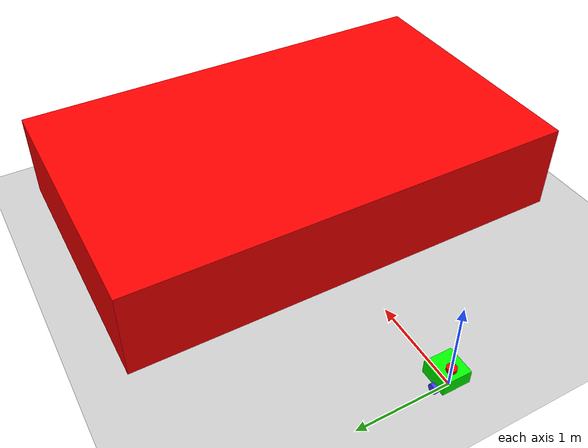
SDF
<?xml version="1.0" ?>
<sdf version="1.9">
    <world name="my_world">
        <include>
            <name>base_link</name>
            <uri>file://src/lab04/description/robot.sdf</uri>
        </include>
        <include>
            <name>base</name>
            <uri>file://src/lab04/description/box.sdf</uri>
        </include>
        <physics name="1ms" type="ignored">
            <max_step_size>0.001</max_step_size>
            <real_time_factor>1.0</real_time_factor>
        </physics>
        <plugin
            filename="libignition-gazebo-physics-system.so"
            name="ignition::gazebo::systems::Physics">
        </plugin>
        <plugin
            filename="libignition-gazebo-user-commands-system.so"
            name="ignition::gazebo::systems::UserCommands">
        </plugin>
        <plugin
            filename="libignition-gazebo-scene-broadcaster-system.so"
            name="ignition::gazebo::systems::SceneBroadcaster">
        </plugin>
        <plugin
            filename="libignition-gazebo-sensors-system.so"
            name="ignition::gazebo::systems::Sensors">
            <render_engine>ogre2</render_engine>
        </plugin>

        <light type="directional" name="sun">
            <cast_shadows>true</cast_shadows>
            <pose>0 0 10 0 0 0</pose>
            <diffuse>0.8 0.8 0.8 1</diffuse>
            <specular>0.2 0.2 0.2 1</specular>
            <attenuation>
                <range>1000</range>
                <constant>0.9</constant>
                <linear>0.01</linear>
                <quadratic>0.001</quadratic>
            </attenuation>
            <direction>-0.5 0.1 -0.9</direction>
        </light>

        <model name="ground_plane">
            <static>true</static>
            <link name="link">
                <collision name="collision">
                <geometry>
                    <plane>
                    <normal>0 0 1</normal>
                    </plane>
                </geometry>
                </collision>
                <visual name="visual">
                <geometry>
                    <plane>
                    <normal>0 0 1</normal>
                    <size>100 100</size>
                    </plane>
                </geometry>
                <material>
                    <ambient>0.8 0.8 0.8 1</ambient>
                    <diffuse>0.8 0.8 0.8 1</diffuse>
                    <specular>0.8 0.8 0.8 1</specular>
                </material>
                </visual>
            </link>
            <!-- Moving Forward-->
            <plugin filename="libignition-gazebo-triggered-publisher-system.so"
            name="ignition::gazebo::systems::TriggeredPublisher">
                <input type="ignition.msgs.Int32" topic="/keyboard/keypress">
                    <match field="data">16777235</match>
                </input>
                <output type="ignition.msgs.Twist" topic="/cmd_vel">
                    linear: {x: 0.5}, angular: {z: 0.0}
                </output>
            </plugin>

            <!-- Stop-->
            <plugin filename="libignition-gazebo-triggered-publisher-system.so"
            name="ignition::gazebo::systems::TriggeredPublisher">
                <input type="ignition.msgs.Int32" topic="/keyboard/keypress">
                    <match field="data">16777216</match>
                </input>
                <output type="ignition.msgs.Twist" topic="/cmd_vel">
                    linear: {x: 0.0}, angular: {z: 0.0}
                </output>
            </plugin>

            <!-- Left -->
            <plugin filename="libignition-gazebo-triggered-publisher-system.so"
            name="ignition::gazebo::systems::TriggeredPublisher">
                <input type="ignition.msgs.Int32" topic="/keyboard/keypress">
                    <match field="data">16777234</match>
                </input>
                <output type="ignition.msgs.Twist" topic="/cmd_vel">
                    linear: {x: 0.0}, angular: {z: 0.5}
                </output>
            </plugin>

            <!-- Right -->
            <plugin filename="libignition-gazebo-triggered-publisher-system.so"
            name="ignition::gazebo::systems::TriggeredPublisher">
                <input type="ignition.msgs.Int32" topic="/keyboard/keypress">
                    <match field="data">16777236</match>
                </input>
                <output type="ignition.msgs.Twist" topic="/cmd_vel">
                    linear: {x: 0.0}, angular: {z: -0.5}
                </output>
            </plugin>

            <!-- back -->
            <plugin filename="libignition-gazebo-triggered-publisher-system.so"
            name="ignition::gazebo::systems::TriggeredPublisher">
                <input type="ignition.msgs.Int32" topic="/keyboard/keypress">
                    <match field="data">16777237</match>
                </input>
                <output type="ignition.msgs.Twist" topic="/cmd_vel">
                    linear: {x: -0.5}, angular: {z: 0.0}
                </output>
            </plugin>
        </model>
    </world>
</sdf>

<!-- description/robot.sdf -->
<sdf version='1.9'>
  <model name='robot'>
    <link name='base_link'>
      <inertial>
        <pose>0.05571428571428574 0 0.07785714285714285 0 0 0</pose>
        <mass>0.69999999999999996</mass>
        <inertia>
          <ixx>0.0063226190476190491</ixx>
          <ixy>0</ixy>
          <ixz>0.0011614285714285719</ixz>
          <iyy>0.007359761904761895</iyy>
          <iyz>0</iyz>
          <izz>0.008762142857142852</izz>
        </inertia>
      </inertial>
      <collision name='base_link_fixed_joint_lump__chassis_collision'>
        <pose>0.04999999999999999 0 0.075 0 0 0</pose>
        <geometry>
          <box>
            <size>0.3 0.3 0.15</size>
          </box>
        </geometry>
      </collision>
      <collision name='base_link_fixed_joint_lump__caster_wheel_collision_1'>
        <pose>0.14 0 0 0 0 0</pose>
        <geometry>
          <sphere>
            <radius>0.050000000000000003</radius>
          </sphere>
        </geometry>
        <surface>
          <contact>
            <ode/>
          </contact>
          <friction>
            <ode>
              <mu>0</mu>
              <mu2>0</mu2>
            </ode>
          </friction>
        </surface>
      </collision>
      <collision name='base_link_fixed_joint_lump__laser_frame_collision_2'>
        <pose>0 0 0.17 0 0 0</pose>
        <geometry>
          <cylinder>
            <length>0.040000000000000001</length>
            <radius>0.050000000000000003</radius>
          </cylinder>
        </geometry>
        <surface>
          <contact>
            <ode/>
          </contact>
          <friction>
            <ode/>
          </friction>
        </surface>
      </collision>
      <visual name='base_link_fixed_joint_lump__chassis_visual'>
        <pose>0.04999999999999999 0 0.075 0 0 0</pose>
        <geometry>
          <box>
            <size>0.3 0.3 0.15</size>
          </box>
        </geometry>
        <material>
          <diffuse>0 1 0 1</diffuse>
          <ambient>0 1 0 1</ambient>
        </material>
      </visual>
      <visual name='base_link_fixed_joint_lump__camera_link_visual_1'>
        <pose>0.205 0 0.08 0 0 0</pose>
        <geometry>
          <box>
            <size>0.01 0.03 0.03</size>
          </box>
        </geometry>
        <material>
          <diffuse>1 0 0 1</diffuse>
          <ambient>1 0 0 1</ambient>
        </material>
      </visual>
      <visual name='base_link_fixed_joint_lump__caster_wheel_visual_2'>
        <pose>0.14 0 0 0 0 0</pose>
        <geometry>
          <sphere>
            <radius>0.050000000000000003</radius>
          </sphere>
        </geometry>
        <material>
          <diffuse>0 0 0 1</diffuse>
          <ambient>0 0 0 1</ambient>
        </material>
      </visual>
      <visual name='base_link_fixed_joint_lump__laser_frame_visual_3'>
        <pose>0 0 0.17 0 0 0</pose>
        <geometry>
          <cylinder>
            <length>0.040000000000000001</length>
            <radius>0.050000000000000003</radius>
          </cylinder>
        </geometry>
        <material>
          <diffuse>1 0 0 1</diffuse>
          <ambient>1 0 0 1</ambient>
        </material>
      </visual>
      <sensor name='camera' type='camera'>
        <camera>
          <horizontal_fov>1.089</horizontal_fov>
          <image>
            <format>R8G8B8</format>
            <width>640</width>
            <height>480</height>
          </image>
          <clip>
            <near>0.050000000000000003</near>
            <far>8</far>
          </clip>
        </camera>
        <always_on>true</always_on>
        <update_rate>30</update_rate>
        <visualize>true</visualize>
        <topic>camera/image_raw</topic>
        <pose>0.205 0 0.08 0 -0 0</pose>
      </sensor>
      <sensor name='lidar' type='gpu_lidar'>
        <pose relative_to='laser_frame'>0 0 0 0 0 0</pose>
        <topic>lidar</topic>
        <update_rate>10</update_rate>
        <ray>
          <scan>
            <horizontal>
              <samples>360</samples>
              <resolution>1</resolution>
              <min_angle>-3.1415926535897931</min_angle>
              <max_angle>3.1415926535897931</max_angle>
            </horizontal>
            <vertical>
              <samples>1</samples>
              <resolution>0.01</resolution>
              <min_angle>0</min_angle>
              <max_angle>0</max_angle>
            </vertical>
          </scan>
          <range>
            <min>0.050000000000000003</min>
            <max>10</max>
            <resolution>0.01</resolution>
          </range>
        </ray>
        <always_on>true</always_on>
        <visualize>true</visualize>
      </sensor>
    </link>
    <joint name='left_wheel_joint' type='revolute'>
      <pose relative_to='base_link'>0 0.175 0 -1.570796326794896 0 0</pose>
      <parent>base_link</parent>
      <child>left_wheel</child>
      <axis>
        <xyz>0 0 1</xyz>
        <limit>
          <lower>-10000000000000000</lower>
          <upper>10000000000000000</upper>
        </limit>
        <dynamics>
          <spring_reference>0</spring_reference>
          <spring_stiffness>0</spring_stiffness>
        </dynamics>
      </axis>
    </joint>
    <link name='left_wheel'>
      <pose relative_to='left_wheel_joint'>0 0 0 0 0 0</pose>
      <inertial>
        <pose>0 0 0 0 0 0</pose>
        <mass>0.10000000000000001</mass>
        <inertia>
          <ixx>7.5833333333333352e-05</ixx>
          <ixy>0</ixy>
          <ixz>0</ixz>
          <iyy>7.5833333333333352e-05</iyy>
          <iyz>0</iyz>
          <izz>0.000125</izz>
        </inertia>
      </inertial>
      <collision name='left_wheel_collision'>
        <pose>0 0 0 0 0 0</pose>
        <geometry>
          <cylinder>
            <length>0.040000000000000001</length>
            <radius>0.050000000000000003</radius>
          </cylinder>
        </geometry>
      </collision>
      <visual name='left_wheel_visual'>
        <pose>0 0 0 0 0 0</pose>
        <geometry>
          <cylinder>
            <length>0.040000000000000001</length>
            <radius>0.050000000000000003</radius>
          </cylinder>
        </geometry>
        <material>
          <diffuse>0.25 0.25 1 1</diffuse>
          <ambient>0.25 0.25 1 1</ambient>
        </material>
      </visual>
    </link>
    <joint name='right_wheel_joint' type='revolute'>
      <pose relative_to='base_link'>0 -0.175 0 1.570796326794896 0 0</pose>
      <parent>base_link</parent>
      <child>right_wheel</child>
      <axis>
        <xyz>0 0 -1</xyz>
        <limit>
          <lower>-10000000000000000</lower>
          <upper>10000000000000000</upper>
        </limit>
        <dynamics>
          <spring_reference>0</spring_reference>
          <spring_stiffness>0</spring_stiffness>
        </dynamics>
      </axis>
    </joint>
    <link name='right_wheel'>
      <pose relative_to='right_wheel_joint'>0 0 0 0 0 0</pose>
      <inertial>
        <pose>0 0 0 0 0 0</pose>
        <mass>0.10000000000000001</mass>
        <inertia>
          <ixx>7.5833333333333352e-05</ixx>
          <ixy>0</ixy>
          <ixz>0</ixz>
          <iyy>7.5833333333333352e-05</iyy>
          <iyz>0</iyz>
          <izz>0.000125</izz>
        </inertia>
      </inertial>
      <collision name='right_wheel_collision'>
        <pose>0 0 0 0 0 0</pose>
        <geometry>
          <cylinder>
            <length>0.040000000000000001</length>
            <radius>0.050000000000000003</radius>
          </cylinder>
        </geometry>
      </collision>
      <visual name='right_wheel_visual'>
        <pose>0 0 0 0 0 0</pose>
        <geometry>
          <cylinder>
            <length>0.040000000000000001</length>
            <radius>0.050000000000000003</radius>
          </cylinder>
        </geometry>
        <material>
          <diffuse>0.25 0.25 1 1</diffuse>
          <ambient>0.25 0.25 1 1</ambient>
        </material>
      </visual>
    </link>
    <pose>0 0 0.05 0 0 0</pose>
    <plugin name='ignition::gazebo::systems::DiffDrive' filename='libignition-gazebo-diff-drive-system.so'>
      <left_joint>left_wheel_joint</left_joint>
      <right_joint>right_wheel_joint</right_joint>
      <wheel_separation>0.3</wheel_separation>
      <wheel_radius>0.05</wheel_radius>
      <odom_publish_frequency>1</odom_publish_frequency>
      <topic>cmd_vel</topic>
    </plugin>
    <plugin name='ignition::gazebo::systems::JointStatePublisher' filename='libignition-gazebo-joint-state-publisher-system'/>
    <plugin name='ignition::gazebo::systems::OdometryPublisher' filename='libignition-gazebo-odometry-publisher-system'>
      <odom_frame>world</odom_frame>
      <robot_base_frame>base_link</robot_base_frame>
    </plugin>
    <frame name='camera_optical_joint' attached_to='camera_link'>
      <pose>0 0 0 -1.5708 -0 -1.5708</pose>
    </frame>
    <frame name='camera_link_optical' attached_to='camera_optical_joint'/>
    <frame name='camera_joint' attached_to='chassis'>
      <pose>0.305 0 0.08 0 -0 0</pose>
    </frame>
    <frame name='camera_link' attached_to='camera_joint'/>
    <frame name='caster_wheel_joint' attached_to='chassis'>
      <pose>0.24 0 0 0 -0 0</pose>
    </frame>
    <frame name='caster_wheel' attached_to='caster_wheel_joint'/>
    <frame name='laser_joint' attached_to='chassis'>
      <pose>0.1 0 0.17 0 -0 0</pose>
    </frame>
    <frame name='laser_frame' attached_to='laser_joint'/>
    <frame name='chassis_joint' attached_to='base_link'>
      <pose>-0.1 0 0 0 -0 0</pose>
    </frame>
    <frame name='chassis' attached_to='chassis_joint'/>
  </model>
</sdf>

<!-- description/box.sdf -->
<sdf version='1.9'>
  <model name='box'>
    <link name='base'>
      <inertial>
        <pose>6 0 1 0 0 0</pose>
        <mass>1</mass>
        <inertia>
          <ixx>0</ixx>
          <ixy>0</ixy>
          <ixz>0</ixz>
          <iyy>0</iyy>
          <iyz>0</iyz>
          <izz>0</izz>
        </inertia>
      </inertial>
      <collision name='base_fixed_joint_lump__box_link_collision'>
        <pose>3 0 0.5 0 0 0</pose>
        <geometry>
          <box>
            <size>3 5 1</size>
          </box>
        </geometry>
      </collision>
      <visual name='base_fixed_joint_lump__box_link_visual'>
        <pose>3 0 0.5 0 0 0</pose>
        <geometry>
          <box>
            <size>3 5 1</size>
          </box>
        </geometry>
        <material>
          <diffuse>1 0 0 1</diffuse>
          <ambient>1 0 0 1</ambient>
        </material>
      </visual>
    </link>
    <frame name='box' attached_to='base'>
      <pose>3 0 0.5 0 -0 0</pose>
    </frame>
    <frame name='box_link' attached_to='box'/>
  </model>
</sdf>
